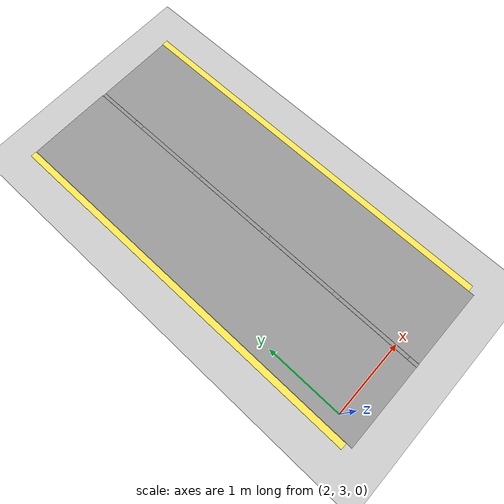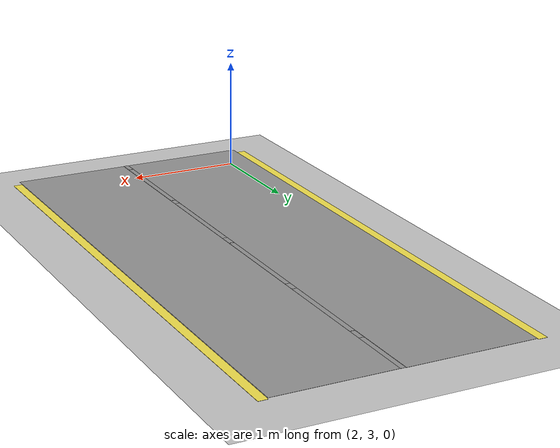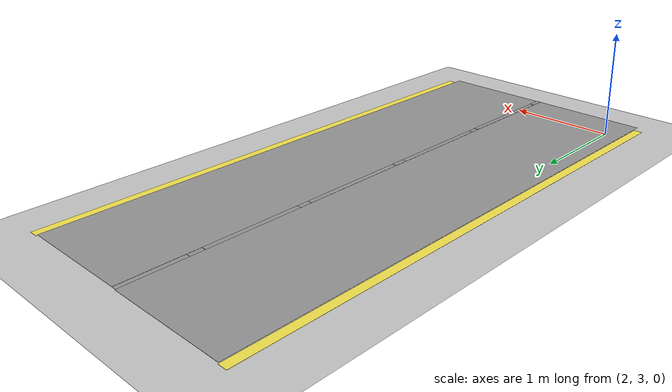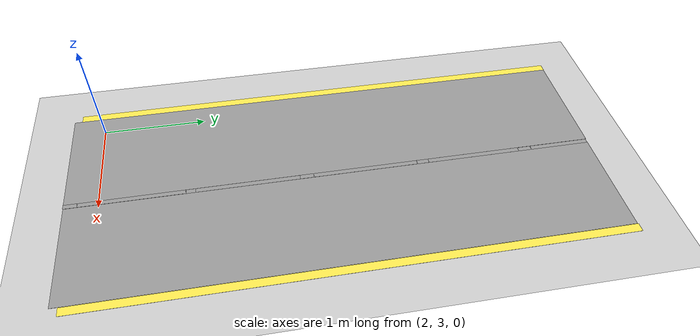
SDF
<sdf version="1.7">
 <world name="default">
  <model name="ground_plane">
   <static>1</static>
   <link name="link">
    <collision name="collision">
     <geometry><plane><normal>0 0 1</normal><size>100 100</size></plane></geometry>
     <surface><friction><ode><mu>100</mu><mu2>50</mu2></ode></friction></surface>
    </collision>
    <visual name="visual">
     <cast_shadows>0</cast_shadows>
     <geometry><plane><normal>0 0 1</normal><size>100 100</size></plane></geometry>
     <material>
      <script><uri>file://media/materials/scripts/gazebo.material</uri><name>Gazebo/Grey</name></script>
     </material>
    </visual>
   </link>
  </model>
  <model name="road_model_clone">
   <link name="link">
    <inertial>
     <mass>10.5378</mass>
     <inertia><ixx>22.7237</ixx><ixy>0</ixy><ixz>0</ixz><iyy>1.10227</iyy><iyz>0</iyz><izz>23.826</izz></inertia>
    </inertial>
    <pose>-1.35822 -0.169763 0.026117 0 -0 0</pose>
    <visual name="visual">
     <geometry><box><size>1.12036 5.08693 0.001624</size></box></geometry>
     <material>
      <script><name>Gazebo/Grey</name><uri>file://media/materials/scripts/gazebo.material</uri></script>
      <shader type="pixel"><normal_map>__default__</normal_map></shader>
      <ambient>0 0 0 1</ambient>
      <diffuse>0 0 0 1</diffuse>
      <specular>0.176 0.204 0.212 1</specular>
      <emissive>0 0 0 1</emissive>
     </material>
    </visual>
    <collision name="collision">
     <geometry><box><size>1.12036 5.08693 0.001624</size></box></geometry>
     <surface>
      <friction>
       <ode><mu>1</mu><mu2>1</mu2><fdir1>0 0 0</fdir1><slip1>0</slip1><slip2>0</slip2></ode>
       <torsional>
        <coefficient>1</coefficient>
        <patch_radius>0</patch_radius>
        <surface_radius>0</surface_radius>
        <use_patch_radius>1</use_patch_radius>
        <ode><slip>0</slip></ode>
       </torsional>
      </friction>
      <bounce><restitution_coefficient>0</restitution_coefficient><threshold>1e+06</threshold></bounce>
      <contact>
       <collide_without_contact>0</collide_without_contact>
       <collide_without_contact_bitmask>1</collide_without_contact_bitmask>
       <collide_bitmask>1</collide_bitmask>
       <ode>
        <soft_cfm>0</soft_cfm>
        <soft_erp>0.2</soft_erp>
        <kp>1e+13</kp>
        <kd>1</kd>
        <max_vel>0.01</max_vel>
        <min_depth>0</min_depth>
       </ode>
       <bullet>
        <split_impulse>1</split_impulse>
        <split_impulse_penetration_threshold>-0.01</split_impulse_penetration_threshold>
        <soft_cfm>0</soft_cfm>
        <soft_erp>0.2</soft_erp>
        <kp>1e+13</kp>
        <kd>1</kd>
       </bullet>
      </contact>
     </surface>
    </collision>
   </link>
   <link name="link_0">
    <inertial>
     <mass>2.47245</mass>
     <inertia>
      <ixx>5.19396</ixx>
      <ixy>0</ixy>
      <ixz>0</ixz>
      <iyy>0.00136845</iyy>
      <iyz>0</iyz>
      <izz>5.19533</izz>
     </inertia>
    </inertial>
    <pose>0.33715 -0.131056 0.021512 0 -0 0</pose>
    <visual name="visual">
     <geometry><box><size>0.081481 5.02084 0.001618</size></box></geometry>
     <material>
      <lighting>1</lighting>
      <script><uri>file://media/materials/scripts/gazebo.material</uri><name>Gazebo/Grey</name></script>
      <shader type="pixel"><normal_map>__default__</normal_map></shader>
      <ambient>0.988 0.914 0.31 1</ambient>
      <diffuse>0.988 0.914 0.31 1</diffuse>
      <specular>0.988 0.914 0.31 1</specular>
      <emissive>0.929 0.831 0 1</emissive>
     </material>
    </visual>
    <collision name="collision">
     <geometry><box><size>0.081481 5.02084 0.001618</size></box></geometry>
     <surface>
      <friction>
       <ode><mu>1</mu><mu2>1</mu2><fdir1>0 0 0</fdir1><slip1>0</slip1><slip2>0</slip2></ode>
       <torsional>
        <coefficient>1</coefficient>
        <patch_radius>0</patch_radius>
        <surface_radius>0</surface_radius>
        <use_patch_radius>1</use_patch_radius>
        <ode><slip>0</slip></ode>
       </torsional>
      </friction>
      <bounce><restitution_coefficient>0</restitution_coefficient><threshold>1e+06</threshold></bounce>
      <contact>
       <collide_without_contact>0</collide_without_contact>
       <collide_without_contact_bitmask>1</collide_without_contact_bitmask>
       <collide_bitmask>1</collide_bitmask>
       <ode>
        <soft_cfm>0</soft_cfm>
        <soft_erp>0.2</soft_erp>
        <kp>1e+13</kp>
        <kd>1</kd>
        <max_vel>0.01</max_vel>
        <min_depth>0</min_depth>
       </ode>
       <bullet>
        <split_impulse>1</split_impulse>
        <split_impulse_penetration_threshold>-0.01</split_impulse_penetration_threshold>
        <soft_cfm>0</soft_cfm>
        <soft_erp>0.2</soft_erp>
        <kp>1e+13</kp>
        <kd>1</kd>
       </bullet>
      </contact>
     </surface>
    </collision>
   </link>
   <link name="link_0_clone">
    <inertial>
     <mass>2.47245</mass>
     <inertia>
      <ixx>5.19396</ixx>
      <ixy>0</ixy>
      <ixz>0</ixz>
      <iyy>0.00136845</iyy>
      <iyz>0</iyz>
      <izz>5.19533</izz>
     </inertia>
    </inertial>
    <pose>-1.9626 -0.129616 0.021512 0 -0 0</pose>
    <visual name="visual">
     <geometry><box><size>0.081481 5.02084 0.001618</size></box></geometry>
     <material>
      <lighting>1</lighting>
      <script><uri>file://media/materials/scripts/gazebo.material</uri><name>Gazebo/Grey</name></script>
      <shader type="pixel"><normal_map>__default__</normal_map></shader>
      <ambient>0.988 0.914 0.31 1</ambient>
      <diffuse>0.988 0.914 0.31 1</diffuse>
      <specular>0.988 0.914 0.31 1</specular>
      <emissive>0.929 0.831 0 1</emissive>
     </material>
    </visual>
    <collision name="collision">
     <geometry><box><size>0.081481 5.02084 0.001618</size></box></geometry>
     <surface>
      <friction>
       <ode><mu>1</mu><mu2>1</mu2><fdir1>0 0 0</fdir1><slip1>0</slip1><slip2>0</slip2></ode>
       <torsional>
        <coefficient>1</coefficient>
        <patch_radius>0</patch_radius>
        <surface_radius>0</surface_radius>
        <use_patch_radius>1</use_patch_radius>
        <ode><slip>0</slip></ode>
       </torsional>
      </friction>
      <bounce><restitution_coefficient>0</restitution_coefficient><threshold>1e+06</threshold></bounce>
      <contact>
       <collide_without_contact>0</collide_without_contact>
       <collide_without_contact_bitmask>1</collide_without_contact_bitmask>
       <collide_bitmask>1</collide_bitmask>
       <ode>
        <soft_cfm>0</soft_cfm>
        <soft_erp>0.2</soft_erp>
        <kp>1e+13</kp>
        <kd>1</kd>
        <max_vel>0.01</max_vel>
        <min_depth>0</min_depth>
       </ode>
       <bullet>
        <split_impulse>1</split_impulse>
        <split_impulse_penetration_threshold>-0.01</split_impulse_penetration_threshold>
        <soft_cfm>0</soft_cfm>
        <soft_erp>0.2</soft_erp>
        <kp>1e+13</kp>
        <kd>1</kd>
       </bullet>
      </contact>
     </surface>
    </collision>
   </link>
   <link name="link_0_clone_0_clone_2">
    <inertial>
     <mass>2.26743</mass>
     <inertia>
      <ixx>0.00299384</ixx>
      <ixy>0</ixy>
      <ixz>0</ixz>
      <iyy>0.00040977</iyy>
      <iyz>0</iyz>
      <izz>0.00340262</izz>
     </inertia>
    </inertial>
    <pose>-0.775336 -2.65231 0.027276 0 -0 0</pose>
    <visual name="visual">
     <geometry><box><size>0.04654 0.125864 0.001618</size></box></geometry>
     <material>
      <lighting>1</lighting>
      <script><uri>file://media/materials/scripts/gazebo.material</uri><name>Gazebo/Grey</name></script>
      <shader type="pixel"><normal_map>__default__</normal_map></shader>
      <ambient>0 0 0 1</ambient>
      <diffuse>0 0 0 1</diffuse>
      <specular>0.18 0.204 0.212 1</specular>
      <emissive>0 0 0 1</emissive>
     </material>
    </visual>
    <collision name="collision">
     <geometry><box><size>0.04654 0.125864 0.001618</size></box></geometry>
     <surface>
      <friction>
       <ode><mu>1</mu><mu2>1</mu2><fdir1>0 0 0</fdir1><slip1>0</slip1><slip2>0</slip2></ode>
       <torsional>
        <coefficient>1</coefficient>
        <patch_radius>0</patch_radius>
        <surface_radius>0</surface_radius>
        <use_patch_radius>1</use_patch_radius>
        <ode><slip>0</slip></ode>
       </torsional>
      </friction>
      <bounce><restitution_coefficient>0</restitution_coefficient><threshold>1e+06</threshold></bounce>
      <contact>
       <collide_without_contact>0</collide_without_contact>
       <collide_without_contact_bitmask>1</collide_without_contact_bitmask>
       <collide_bitmask>1</collide_bitmask>
       <ode>
        <soft_cfm>0</soft_cfm>
        <soft_erp>0.2</soft_erp>
        <kp>1e+13</kp>
        <kd>1</kd>
        <max_vel>0.01</max_vel>
        <min_depth>0</min_depth>
       </ode>
       <bullet>
        <split_impulse>1</split_impulse>
        <split_impulse_penetration_threshold>-0.01</split_impulse_penetration_threshold>
        <soft_cfm>0</soft_cfm>
        <soft_erp>0.2</soft_erp>
        <kp>1e+13</kp>
        <kd>1</kd>
       </bullet>
      </contact>
     </surface>
    </collision>
   </link>
   <link name="link_0_clone_0_clone_2_clone">
    <inertial>
     <mass>12.7415</mass>
     <inertia>
      <ixx>1.02827</ixx>
      <ixy>0</ixy>
      <ixz>0</ixz>
      <iyy>0.00221185</iyy>
      <iyz>0</iyz>
      <izz>1.03047</izz>
     </inertia>
    </inertial>
    <pose>-0.774748 -2.09462 0.027202 0 -0 0</pose>
    <visual name="visual">
     <geometry><box><size>0.045613 0.984084 0.001618</size></box></geometry>
     <material>
      <lighting>1</lighting>
      <script><uri>file://media/materials/scripts/gazebo.material</uri><name>Gazebo/Grey</name></script>
      <shader type="pixel"><normal_map>__default__</normal_map></shader>
      <ambient>0.933 0.933 0.925 1</ambient>
      <diffuse>0.933 0.933 0.925 1</diffuse>
      <specular>0.933 0.933 0.925 1</specular>
      <emissive>1 1 1 1</emissive>
     </material>
    </visual>
    <collision name="collision">
     <geometry><box><size>0.045613 0.984084 0.001618</size></box></geometry>
     <surface>
      <friction>
       <ode><mu>1</mu><mu2>1</mu2><fdir1>0 0 0</fdir1><slip1>0</slip1><slip2>0</slip2></ode>
       <torsional>
        <coefficient>1</coefficient>
        <patch_radius>0</patch_radius>
        <surface_radius>0</surface_radius>
        <use_patch_radius>1</use_patch_radius>
        <ode><slip>0</slip></ode>
       </torsional>
      </friction>
      <bounce><restitution_coefficient>0</restitution_coefficient><threshold>1e+06</threshold></bounce>
      <contact>
       <collide_without_contact>0</collide_without_contact>
       <collide_without_contact_bitmask>1</collide_without_contact_bitmask>
       <collide_bitmask>1</collide_bitmask>
       <ode>
        <soft_cfm>0</soft_cfm>
        <soft_erp>0.2</soft_erp>
        <kp>1e+13</kp>
        <kd>1</kd>
        <max_vel>0.01</max_vel>
        <min_depth>0</min_depth>
       </ode>
       <bullet>
        <split_impulse>1</split_impulse>
        <split_impulse_penetration_threshold>-0.01</split_impulse_penetration_threshold>
        <soft_cfm>0</soft_cfm>
        <soft_erp>0.2</soft_erp>
        <kp>1e+13</kp>
        <kd>1</kd>
       </bullet>
      </contact>
     </surface>
    </collision>
   </link>
   <link name="link_0_clone_0_clone_2_clone_0">
    <inertial>
     <mass>1.5847</mass>
     <inertia>
      <ixx>0.00105145</ixx>
      <ixy>0</ixy>
      <ixz>0</ixz>
      <iyy>0.00028396</iyy>
      <iyz>0</iyz>
      <izz>0.00133472</izz>
     </inertia>
    </inertial>
    <pose>-0.774451 -1.55707 0.025608 0 -0 0</pose>
    <visual name="visual">
     <geometry><box><size>0.046343 0.089215 0.001618</size></box></geometry>
     <material>
      <lighting>1</lighting>
      <script><uri>file://media/materials/scripts/gazebo.material</uri><name>Gazebo/Grey</name></script>
      <shader type="pixel"><normal_map>__default__</normal_map></shader>
      <ambient>0 0 0 1</ambient>
      <diffuse>0.008 0.008 0.008 1</diffuse>
      <specular>0.173 0.204 0.212 1</specular>
      <emissive>0.008 0.008 0.008 1</emissive>
     </material>
    </visual>
    <collision name="collision">
     <geometry><box><size>0.046343 0.089215 0.001618</size></box></geometry>
     <surface>
      <friction>
       <ode><mu>1</mu><mu2>1</mu2><fdir1>0 0 0</fdir1><slip1>0</slip1><slip2>0</slip2></ode>
       <torsional>
        <coefficient>1</coefficient>
        <patch_radius>0</patch_radius>
        <surface_radius>0</surface_radius>
        <use_patch_radius>1</use_patch_radius>
        <ode><slip>0</slip></ode>
       </torsional>
      </friction>
      <bounce><restitution_coefficient>0</restitution_coefficient><threshold>1e+06</threshold></bounce>
      <contact>
       <collide_without_contact>0</collide_without_contact>
       <collide_without_contact_bitmask>1</collide_without_contact_bitmask>
       <collide_bitmask>1</collide_bitmask>
       <ode>
        <soft_cfm>0</soft_cfm>
        <soft_erp>0.2</soft_erp>
        <kp>1e+13</kp>
        <kd>1</kd>
        <max_vel>0.01</max_vel>
        <min_depth>0</min_depth>
       </ode>
       <bullet>
        <split_impulse>1</split_impulse>
        <split_impulse_penetration_threshold>-0.01</split_impulse_penetration_threshold>
        <soft_cfm>0</soft_cfm>
        <soft_erp>0.2</soft_erp>
        <kp>1e+13</kp>
        <kd>1</kd>
       </bullet>
      </contact>
     </surface>
    </collision>
   </link>
   <link name="link_0_clone_0_clone_2_clone_1">
    <inertial>
     <mass>13.1728</mass>
     <inertia>
      <ixx>1.06451</ixx>
      <ixy>0</ixy>
      <ixz>0</ixz>
      <iyy>0.00229705</iyy>
      <iyz>0</iyz>
      <izz>1.0668</izz>
     </inertia>
    </inertial>
    <pose>-0.774174 -1.02033 0.02636 0 -0 0</pose>
    <visual name="visual">
     <geometry><box><size>0.045716 0.984748 0.001618</size></box></geometry>
     <material>
      <lighting>1</lighting>
      <script><uri>file://media/materials/scripts/gazebo.material</uri><name>Gazebo/Grey</name></script>
      <shader type="pixel"><normal_map>__default__</normal_map></shader>
      <ambient>0.933 0.933 0.925 1</ambient>
      <diffuse>0.933 0.933 0.925 1</diffuse>
      <specular>0.933 0.933 0.925 1</specular>
      <emissive>0.933 0.933 0.925 1</emissive>
     </material>
    </visual>
    <collision name="collision">
     <geometry><box><size>0.045716 0.984748 0.001618</size></box></geometry>
     <surface>
      <friction>
       <ode><mu>1</mu><mu2>1</mu2><fdir1>0 0 0</fdir1><slip1>0</slip1><slip2>0</slip2></ode>
       <torsional>
        <coefficient>1</coefficient>
        <patch_radius>0</patch_radius>
        <surface_radius>0</surface_radius>
        <use_patch_radius>1</use_patch_radius>
        <ode><slip>0</slip></ode>
       </torsional>
      </friction>
      <bounce><restitution_coefficient>0</restitution_coefficient><threshold>1e+06</threshold></bounce>
      <contact>
       <collide_without_contact>0</collide_without_contact>
       <collide_without_contact_bitmask>1</collide_without_contact_bitmask>
       <collide_bitmask>1</collide_bitmask>
       <ode>
        <soft_cfm>0</soft_cfm>
        <soft_erp>0.2</soft_erp>
        <kp>1e+13</kp>
        <kd>1</kd>
        <max_vel>0.01</max_vel>
        <min_depth>0</min_depth>
       </ode>
       <bullet>
        <split_impulse>1</split_impulse>
        <split_impulse_penetration_threshold>-0.01</split_impulse_penetration_threshold>
        <soft_cfm>0</soft_cfm>
        <soft_erp>0.2</soft_erp>
        <kp>1e+13</kp>
        <kd>1</kd>
       </bullet>
      </contact>
     </surface>
    </collision>
   </link>
   <link name="link_0_clone_0_clone_2_clone_2">
    <inertial>
     <mass>2.27845</mass>
     <inertia>
      <ixx>0.00325717</ixx>
      <ixy>0</ixy>
      <ixz>0</ixz>
      <iyy>0.000419046</iyy>
      <iyz>0</iyz>
      <izz>0.00367522</izz>
     </inertia>
    </inertial>
    <pose>-0.774213 -0.463139 0.027214 0 -0 0</pose>
    <visual name="visual">
     <geometry><box><size>0.046951 0.130966 0.001618</size></box></geometry>
     <material>
      <lighting>1</lighting>
      <script><uri>file://media/materials/scripts/gazebo.material</uri><name>Gazebo/Grey</name></script>
      <shader type="pixel"><normal_map>__default__</normal_map></shader>
      <ambient>0 0 0 1</ambient>
      <diffuse>0 0 0 1</diffuse>
      <specular>0.173 0.204 0.212 1</specular>
      <emissive>0.008 0.008 0.008 1</emissive>
     </material>
    </visual>
    <collision name="collision">
     <geometry><box><size>0.046951 0.130966 0.001618</size></box></geometry>
     <surface>
      <friction>
       <ode><mu>1</mu><mu2>1</mu2><fdir1>0 0 0</fdir1><slip1>0</slip1><slip2>0</slip2></ode>
       <torsional>
        <coefficient>1</coefficient>
        <patch_radius>0</patch_radius>
        <surface_radius>0</surface_radius>
        <use_patch_radius>1</use_patch_radius>
        <ode><slip>0</slip></ode>
       </torsional>
      </friction>
      <bounce><restitution_coefficient>0</restitution_coefficient><threshold>1e+06</threshold></bounce>
      <contact>
       <collide_without_contact>0</collide_without_contact>
       <collide_without_contact_bitmask>1</collide_without_contact_bitmask>
       <collide_bitmask>1</collide_bitmask>
       <ode>
        <soft_cfm>0</soft_cfm>
        <soft_erp>0.2</soft_erp>
        <kp>1e+13</kp>
        <kd>1</kd>
        <max_vel>0.01</max_vel>
        <min_depth>0</min_depth>
       </ode>
       <bullet>
        <split_impulse>1</split_impulse>
        <split_impulse_penetration_threshold>-0.01</split_impulse_penetration_threshold>
        <soft_cfm>0</soft_cfm>
        <soft_erp>0.2</soft_erp>
        <kp>1e+13</kp>
        <kd>1</kd>
       </bullet>
      </contact>
     </surface>
    </collision>
   </link>
   <link name="link_0_clone_0_clone_2_clone_3">
    <inertial>
     <mass>13.2362</mass>
     <inertia>
      <ixx>1.12778</ixx>
      <ixy>0</ixy>
      <ixz>0</ixz>
      <iyy>0.00236127</iyy>
      <iyz>0</iyz>
      <izz>1.13013</izz>
     </inertia>
    </inertial>
    <pose>-0.774623 0.109913 0.026568 0 -0 0</pose>
    <visual name="visual">
     <geometry><box><size>0.04624 1.01116 0.001618</size></box></geometry>
     <material>
      <lighting>1</lighting>
      <script><uri>file://media/materials/scripts/gazebo.material</uri><name>Gazebo/Grey</name></script>
      <shader type="pixel"><normal_map>__default__</normal_map></shader>
      <ambient>0.933 0.933 0.925 1</ambient>
      <diffuse>0.933 0.933 0.925 1</diffuse>
      <specular>0.933 0.933 0.925 1</specular>
      <emissive>0.933 0.933 0.925 1</emissive>
     </material>
    </visual>
    <collision name="collision">
     <geometry><box><size>0.04624 1.01116 0.001618</size></box></geometry>
     <surface>
      <friction>
       <ode><mu>1</mu><mu2>1</mu2><fdir1>0 0 0</fdir1><slip1>0</slip1><slip2>0</slip2></ode>
       <torsional>
        <coefficient>1</coefficient>
        <patch_radius>0</patch_radius>
        <surface_radius>0</surface_radius>
        <use_patch_radius>1</use_patch_radius>
        <ode><slip>0</slip></ode>
       </torsional>
      </friction>
      <bounce><restitution_coefficient>0</restitution_coefficient><threshold>1e+06</threshold></bounce>
      <contact>
       <collide_without_contact>0</collide_without_contact>
       <collide_without_contact_bitmask>1</collide_without_contact_bitmask>
       <collide_bitmask>1</collide_bitmask>
       <ode>
        <soft_cfm>0</soft_cfm>
        <soft_erp>0.2</soft_erp>
        <kp>1e+13</kp>
        <kd>1</kd>
        <max_vel>0.01</max_vel>
        <min_depth>0</min_depth>
       </ode>
       <bullet>
        <split_impulse>1</split_impulse>
        <split_impulse_penetration_threshold>-0.01</split_impulse_penetration_threshold>
        <soft_cfm>0</soft_cfm>
        <soft_erp>0.2</soft_erp>
        <kp>1e+13</kp>
        <kd>1</kd>
       </bullet>
      </contact>
     </surface>
    </collision>
   </link>
   <link name="link_0_clone_0_clone_2_clone_4">
    <inertial>
     <mass>2.13962</mass>
     <inertia>
      <ixx>0.00233855</ixx>
      <ixy>0</ixy>
      <ixz>0</ixz>
      <iyy>0.000388578</iyy>
      <iyz>0</iyz>
      <izz>0.00272619</izz>
     </inertia>
    </inertial>
    <pose>-0.774536 0.674336 0.026306 0 -0 0</pose>
    <visual name="visual">
     <geometry><box><size>0.046655 0.114512 0.001618</size></box></geometry>
     <material>
      <lighting>1</lighting>
      <script><uri>file://media/materials/scripts/gazebo.material</uri><name>Gazebo/Grey</name></script>
      <shader type="pixel"><normal_map>__default__</normal_map></shader>
      <ambient>0 0 0 1</ambient>
      <diffuse>0 0 0 1</diffuse>
      <specular>0.173 0.204 0.212 1</specular>
      <emissive>0 0 0 1</emissive>
     </material>
    </visual>
    <collision name="collision">
     <geometry><box><size>0.046655 0.114512 0.001618</size></box></geometry>
     <surface>
      <friction>
       <ode><mu>1</mu><mu2>1</mu2><fdir1>0 0 0</fdir1><slip1>0</slip1><slip2>0</slip2></ode>
       <torsional>
        <coefficient>1</coefficient>
        <patch_radius>0</patch_radius>
        <surface_radius>0</surface_radius>
        <use_patch_radius>1</use_patch_radius>
        <ode><slip>0</slip></ode>
       </torsional>
      </friction>
      <bounce><restitution_coefficient>0</restitution_coefficient><threshold>1e+06</threshold></bounce>
      <contact>
       <collide_without_contact>0</collide_without_contact>
       <collide_without_contact_bitmask>1</collide_without_contact_bitmask>
       <collide_bitmask>1</collide_bitmask>
       <ode>
        <soft_cfm>0</soft_cfm>
        <soft_erp>0.2</soft_erp>
        <kp>1e+13</kp>
        <kd>1</kd>
        <max_vel>0.01</max_vel>
        <min_depth>0</min_depth>
       </ode>
       <bullet>
        <split_impulse>1</split_impulse>
        <split_impulse_penetration_threshold>-0.01</split_impulse_penetration_threshold>
        <soft_cfm>0</soft_cfm>
        <soft_erp>0.2</soft_erp>
        <kp>1e+13</kp>
        <kd>1</kd>
       </bullet>
      </contact>
     </surface>
    </collision>
   </link>
   <link name="link_0_clone_0_clone_2_clone_5">
    <inertial>
     <mass>10.5995</mass>
     <inertia>
      <ixx>0.738857</ixx>
      <ixy>0</ixy>
      <ixz>0</ixz>
      <iyy>0.00203771</iyy>
      <iyz>0</iyz>
      <izz>0.74089</izz>
     </inertia>
    </inertial>
    <pose>-0.774959 1.18933 0.026025 0 -0 0</pose>
    <visual name="visual">
     <geometry><box><size>0.048003 0.914591 0.001618</size></box></geometry>
     <material>
      <lighting>1</lighting>
      <script><uri>file://media/materials/scripts/gazebo.material</uri><name>Gazebo/Grey</name></script>
      <shader type="pixel"><normal_map>__default__</normal_map></shader>
      <ambient>0.933 0.933 0.925 1</ambient>
      <diffuse>0.933 0.933 0.925 1</diffuse>
      <specular>0.933 0.933 0.925 1</specular>
      <emissive>0.933 0.933 0.925 1</emissive>
     </material>
    </visual>
    <collision name="collision">
     <geometry><box><size>0.048003 0.914591 0.001618</size></box></geometry>
     <surface>
      <friction>
       <ode><mu>1</mu><mu2>1</mu2><fdir1>0 0 0</fdir1><slip1>0</slip1><slip2>0</slip2></ode>
       <torsional>
        <coefficient>1</coefficient>
        <patch_radius>0</patch_radius>
        <surface_radius>0</surface_radius>
        <use_patch_radius>1</use_patch_radius>
        <ode><slip>0</slip></ode>
       </torsional>
      </friction>
      <bounce><restitution_coefficient>0</restitution_coefficient><threshold>1e+06</threshold></bounce>
      <contact>
       <collide_without_contact>0</collide_without_contact>
       <collide_without_contact_bitmask>1</collide_without_contact_bitmask>
       <collide_bitmask>1</collide_bitmask>
       <ode>
        <soft_cfm>0</soft_cfm>
        <soft_erp>0.2</soft_erp>
        <kp>1e+13</kp>
        <kd>1</kd>
        <max_vel>0.01</max_vel>
        <min_depth>0</min_depth>
       </ode>
       <bullet>
        <split_impulse>1</split_impulse>
        <split_impulse_penetration_threshold>-0.01</split_impulse_penetration_threshold>
        <soft_cfm>0</soft_cfm>
        <soft_erp>0.2</soft_erp>
        <kp>1e+13</kp>
        <kd>1</kd>
       </bullet>
      </contact>
     </surface>
    </collision>
   </link>
   <link name="link_0_clone_0_clone_2_clone_6">
    <inertial>
     <mass>2.3109</mass>
     <inertia>
      <ixx>0.00335196</ixx>
      <ixy>0</ixy>
      <ixz>0</ixz>
      <iyy>0.000416262</iyy>
      <iyz>0</iyz>
      <izz>0.00376721</izz>
     </inertia>
    </inertial>
    <pose>-0.774256 1.71332 0.024517 0 -0 0</pose>
    <visual name="visual">
     <geometry><box><size>0.046464 0.131922 0.001618</size></box></geometry>
     <material>
      <lighting>1</lighting>
      <script><uri>file://media/materials/scripts/gazebo.material</uri><name>Gazebo/Grey</name></script>
      <shader type="pixel"><normal_map>__default__</normal_map></shader>
      <ambient>0 0 0 1</ambient>
      <diffuse>0 0 0 1</diffuse>
      <specular>0.173 0.204 0.212 1</specular>
      <emissive>0.008 0.008 0.008 1</emissive>
     </material>
    </visual>
    <collision name="collision">
     <geometry><box><size>0.046464 0.131922 0.001618</size></box></geometry>
     <surface>
      <friction>
       <ode><mu>1</mu><mu2>1</mu2><fdir1>0 0 0</fdir1><slip1>0</slip1><slip2>0</slip2></ode>
       <torsional>
        <coefficient>1</coefficient>
        <patch_radius>0</patch_radius>
        <surface_radius>0</surface_radius>
        <use_patch_radius>1</use_patch_radius>
        <ode><slip>0</slip></ode>
       </torsional>
      </friction>
      <bounce><restitution_coefficient>0</restitution_coefficient><threshold>1e+06</threshold></bounce>
      <contact>
       <collide_without_contact>0</collide_without_contact>
       <collide_without_contact_bitmask>1</collide_without_contact_bitmask>
       <collide_bitmask>1</collide_bitmask>
       <ode>
        <soft_cfm>0</soft_cfm>
        <soft_erp>0.2</soft_erp>
        <kp>1e+13</kp>
        <kd>1</kd>
        <max_vel>0.01</max_vel>
        <min_depth>0</min_depth>
       </ode>
       <bullet>
        <split_impulse>1</split_impulse>
        <split_impulse_penetration_threshold>-0.01</split_impulse_penetration_threshold>
        <soft_cfm>0</soft_cfm>
        <soft_erp>0.2</soft_erp>
        <kp>1e+13</kp>
        <kd>1</kd>
       </bullet>
      </contact>
     </surface>
    </collision>
   </link>
   <link name="link_0_clone_0_clone_2_clone_7">
    <inertial>
     <mass>8.541</mass>
     <inertia>
      <ixx>0.24544</ixx>
      <ixy>0</ixy>
      <ixz>0</ixz>
      <iyy>0.00158449</iyy>
      <iyz>0</iyz>
      <izz>0.247021</izz>
     </inertia>
    </inertial>
    <pose>-0.773905 2.07339 0.024407 0 -0 0</pose>
    <visual name="visual">
     <geometry><box><size>0.047155 0.587229 0.001618</size></box></geometry>
     <material>
      <lighting>1</lighting>
      <script><uri>file://media/materials/scripts/gazebo.material</uri><name>Gazebo/Grey</name></script>
      <shader type="pixel"><normal_map>__default__</normal_map></shader>
      <ambient>0.933 0.933 0.925 1</ambient>
      <diffuse>0.933 0.933 0.925 1</diffuse>
      <specular>0.933 0.933 0.925 1</specular>
      <emissive>0.933 0.933 0.925 1</emissive>
     </material>
    </visual>
    <collision name="collision">
     <geometry><box><size>0.047155 0.587229 0.001618</size></box></geometry>
     <surface>
      <friction>
       <ode><mu>1</mu><mu2>1</mu2><fdir1>0 0 0</fdir1><slip1>0</slip1><slip2>0</slip2></ode>
       <torsional>
        <coefficient>1</coefficient>
        <patch_radius>0</patch_radius>
        <surface_radius>0</surface_radius>
        <use_patch_radius>1</use_patch_radius>
        <ode><slip>0</slip></ode>
       </torsional>
      </friction>
      <bounce><restitution_coefficient>0</restitution_coefficient><threshold>1e+06</threshold></bounce>
      <contact>
       <collide_without_contact>0</collide_without_contact>
       <collide_without_contact_bitmask>1</collide_without_contact_bitmask>
       <collide_bitmask>1</collide_bitmask>
       <ode>
        <soft_cfm>0</soft_cfm>
        <soft_erp>0.2</soft_erp>
        <kp>1e+13</kp>
        <kd>1</kd>
        <max_vel>0.01</max_vel>
        <min_depth>0</min_depth>
       </ode>
       <bullet>
        <split_impulse>1</split_impulse>
        <split_impulse_penetration_threshold>-0.01</split_impulse_penetration_threshold>
        <soft_cfm>0</soft_cfm>
        <soft_erp>0.2</soft_erp>
        <kp>1e+13</kp>
        <kd>1</kd>
       </bullet>
      </contact>
     </surface>
    </collision>
   </link>
   <link name="link_clone">
    <inertial>
     <mass>10.3664</mass>
     <inertia><ixx>22.2817</ixx><ixy>0</ixy><ixz>0</ixz><iyy>0.945918</iyy><iyz>0</iyz><izz>23.2276</izz></inertia>
    </inertial>
    <pose>-0.227846 -0.171563 0.025826 0 -0 0</pose>
    <visual name="visual">
     <geometry><box><size>1.04641 5.07868 0.001624</size></box></geometry>
     <material>
      <script><name>Gazebo/Grey</name><uri>file://media/materials/scripts/gazebo.material</uri></script>
      <shader type="pixel"><normal_map>__default__</normal_map></shader>
      <ambient>0 0 0 1</ambient>
      <diffuse>0 0 0 1</diffuse>
      <specular>0.176 0.204 0.212 1</specular>
      <emissive>0 0 0 1</emissive>
     </material>
    </visual>
    <collision name="collision">
     <geometry><box><size>1.04641 5.07868 0.001624</size></box></geometry>
     <surface>
      <friction>
       <ode><mu>1</mu><mu2>1</mu2><fdir1>0 0 0</fdir1><slip1>0</slip1><slip2>0</slip2></ode>
       <torsional>
        <coefficient>1</coefficient>
        <patch_radius>0</patch_radius>
        <surface_radius>0</surface_radius>
        <use_patch_radius>1</use_patch_radius>
        <ode><slip>0</slip></ode>
       </torsional>
      </friction>
      <bounce><restitution_coefficient>0</restitution_coefficient><threshold>1e+06</threshold></bounce>
      <contact>
       <collide_without_contact>0</collide_without_contact>
       <collide_without_contact_bitmask>1</collide_without_contact_bitmask>
       <collide_bitmask>1</collide_bitmask>
       <ode>
        <soft_cfm>0</soft_cfm>
        <soft_erp>0.2</soft_erp>
        <kp>1e+13</kp>
        <kd>1</kd>
        <max_vel>0.01</max_vel>
        <min_depth>0</min_depth>
       </ode>
       <bullet>
        <split_impulse>1</split_impulse>
        <split_impulse_penetration_threshold>-0.01</split_impulse_penetration_threshold>
        <soft_cfm>0</soft_cfm>
        <soft_erp>0.2</soft_erp>
        <kp>1e+13</kp>
        <kd>1</kd>
       </bullet>
      </contact>
     </surface>
    </collision>
   </link>
   <static>1</static>
   <pose>3.74362 5.40122 0 0 -0 0</pose>
  </model>
 </world>
</sdf>
